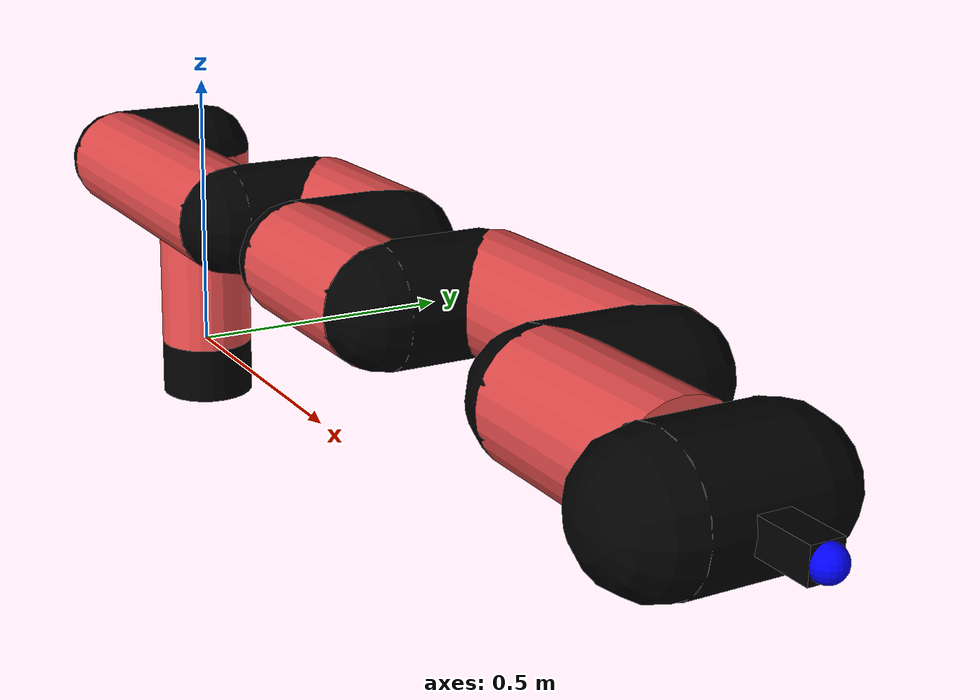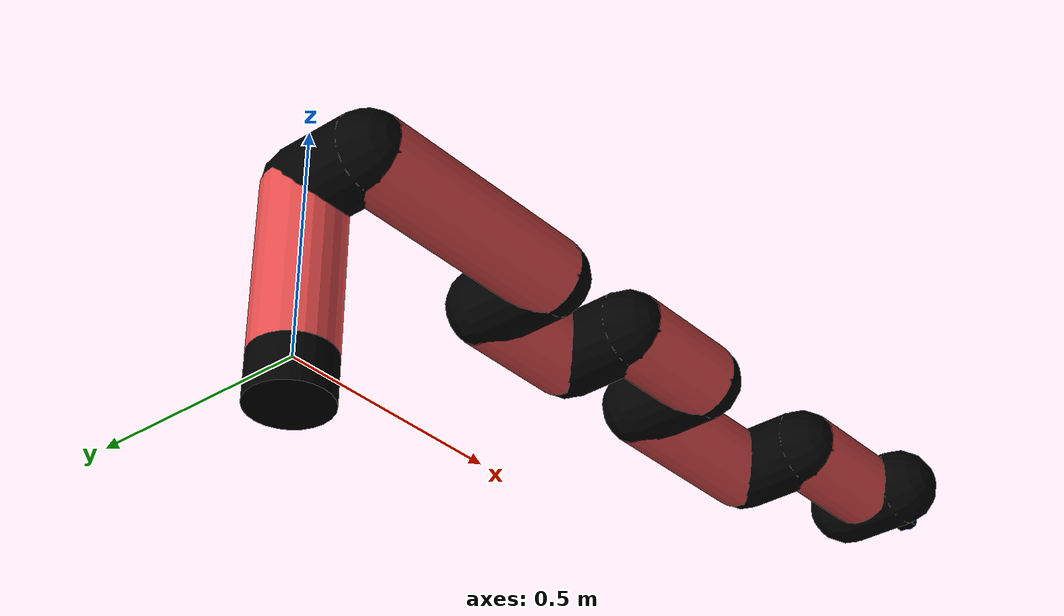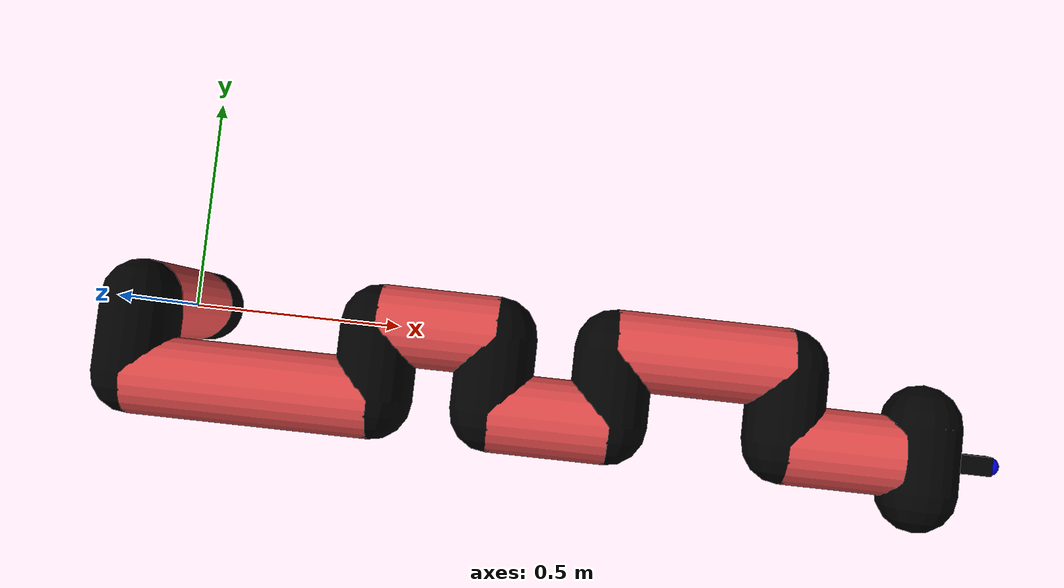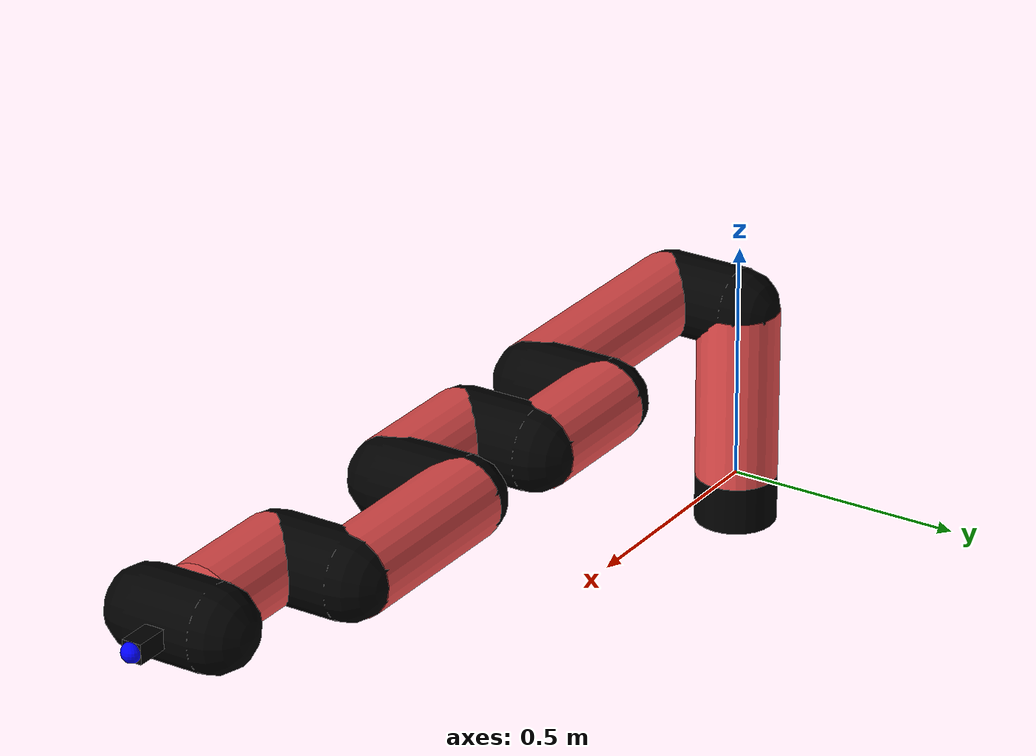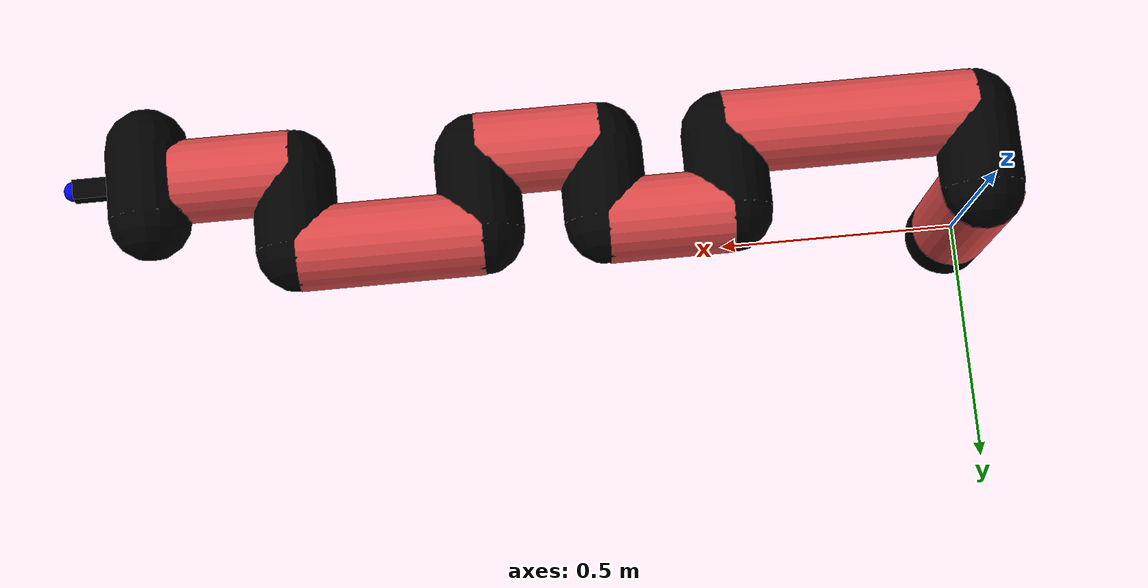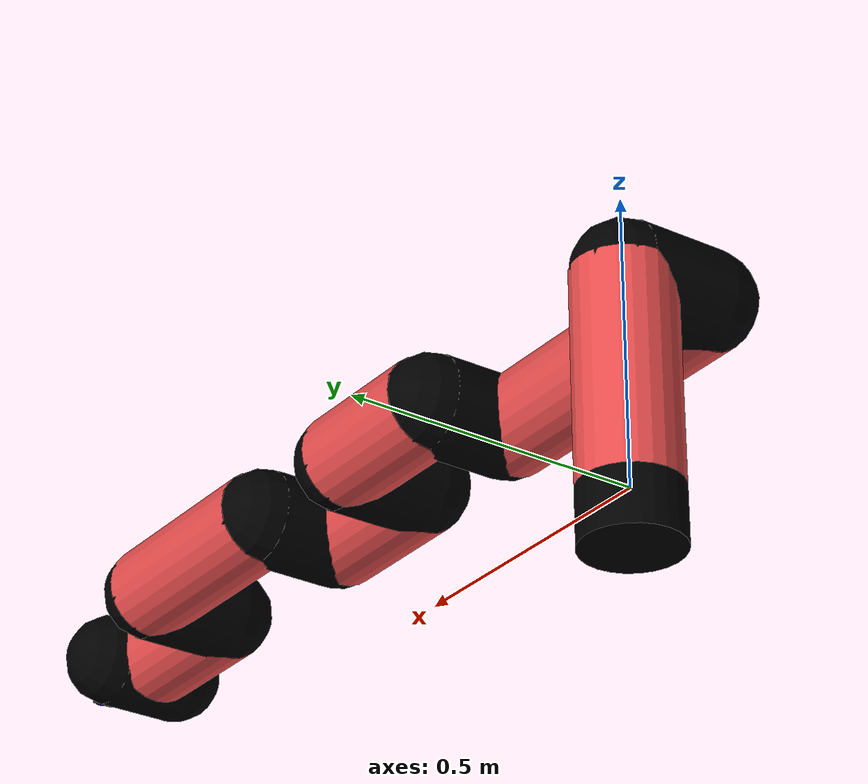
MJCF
<mujoco model="manipulator">
		<compiler angle="degree" coordinate="local" inertiafromgeom="auto" meshdir="meshes/"/>
		<option gravity="0 0 0" integrator="RK4" iterations="30" timestep="0.01"/>

		<default>
		<joint armature="1" limited="true" stiffness="10" damping="15" frictionloss="5.0"/>
		<geom conaffinity="1" condim="3" contype="1" friction=".5 .1 .1" margin="0.002"/>
		<motor ctrllimited="true"/>
		<position ctrllimited="true"/>
		</default>

		<asset>
		<texture builtin="gradient" height="100" rgb1="1.0 1.0 1.0" rgb2="1.0 1.0 1.0" type="skybox" width="100"/>
		<texture builtin="flat" height="32" name="arm_tex" rgb1="0.9 0.3 0.3" type="2d" width="32"/>
		<texture builtin="flat" height="32" name="gripper_tex" rgb1="0.0 0.0 0.0" type="cube" width="32"/>

		<material name="arm_mat" shininess="0.1" specular="0.1" texture="arm_tex"/>
		<material name="gripper_mat" shininess="1" specular="1" texture="gripper_tex"/>
		</asset>

		<worldbody>
		<light cutoff="45" diffuse=".8 .8 .8" dir="0 0.16 -1" directional="false" name="light" pos="0 -2.0 8.0" specular="0.3 0.3 0.3"/>

		<body name="base_link" pos="0 0 -0.1">
		<geom fromto="0 0 0 0 0 0.1" material="arm_mat" name="base_link" rgba="0.0 0.0 0.0 1" size="0.085" type="cylinder"/>
		</body>

		<body name="l1" pos="0 0 0">
<geom fromto="0 0 0 0 0 0.37" material="arm_mat" name="l1" rgba="0.9 0.3 0.3 1" size="0.085" type="cylinder"/>
<geom fromto="0 0 0.37 0 -0.16 0.37" material="arm_mat" name="l1_ex" rgba="0.0 0.0 0.0 1" size="0.085" type="capsule"/>
<joint axis="0 0 1" name="j1" pos="0 0 0" range="-90 90" damping="33.89" frictionloss="10.62"/>

<body name="l2" pos="0 -0.16 0.37">
<geom fromto="0 0 0 0.51 0 0" material="arm_mat" name="l2" rgba="0.9 0.3 0.3 1" size="0.085" type="cylinder"/>
<geom fromto="0.51 0 0 0.51 0.16 0" material="arm_mat" name="l2_ex" rgba="0.0 0.0 0.0 1" size="0.085" type="capsule"/>
<joint axis="0.0 1.0 0.0" name="j2" pos="0 0 0" range="-90 60" damping="25.18" frictionloss="10.2"/>

<body name="l3" pos="0.51 0.16 0">
<geom fromto="0 0 0 0.25 0 0" material="arm_mat" name="l3" rgba="0.9 0.3 0.3 1" size="0.085" type="cylinder"/>
<geom fromto="0.25 0 0 0.25 -0.16 0" material="arm_mat" name="l3_ex" rgba="0.0 0.0 0.0 1" size="0.085" type="capsule"/>
<joint axis="0.0 1.0 0.0" name="j3" pos="0 0 0" range="-30 60" damping="30.66" frictionloss="11.46"/>

<body name="l4" pos="0.25 -0.16 0">
<geom fromto="0 0 0 0.25 0 0" material="arm_mat" name="l4" rgba="0.9 0.3 0.3 1" size="0.085" type="cylinder"/>
<geom fromto="0.25 0 0 0.25 0.16 0" material="arm_mat" name="l4_ex" rgba="0.0 0.0 0.0 1" size="0.085" type="capsule"/>
<joint axis="0.0 1.0 0.0" name="j4" pos="0 0 0" range="-30 60" damping="36.55" frictionloss="12.16"/>

<body name="l5" pos="0.25 0.16 0">
<geom fromto="0 0 0 0.37 0 0" material="arm_mat" name="l5" rgba="0.9 0.3 0.3 1" size="0.085" type="cylinder"/>
<geom fromto="0.37 0 0 0.37 -0.16 0" material="arm_mat" name="l5_ex" rgba="0.0 0.0 0.0 1" size="0.085" type="capsule"/>
<joint axis="0.0 1.0 0.0" name="j5" pos="0 0 0" range="-30 60" damping="25.36" frictionloss="9.5"/>

<body name="l6" pos="0.37 -0.16 0">
<geom fromto="0 0 0 0.24 0 0" material="arm_mat" name="l6" rgba="0.9 0.3 0.3 1" size="0.085" type="cylinder"/>
<joint axis="0.0 1.0 0.0" name="j6" pos="0 0 0" range="-30 60" damping="28.41" frictionloss="7.55"/>

<body name="gripper" pos="0.24 0 0">
<geom fromto="0.05 -0.07 0 0.05 0.07 0" material="gripper_mat" name="gripper" rgba="0.0 0.0 0.0 1" size="0.085" type="capsule"/><joint axis="1 0 0" name="j7" pos="0 0 0" range="-90 90" damping="15" frictionloss="5.0"/><body name="finger" pos="0.1 0 0">
<geom fromto="0 0.0 0 0.1 0.0 0" material="gripper_mat" name="finger" rgba="0.0 0.0 0.0 1" size="0.020 0.06 0.06" type="box"/>
</body>
<site name="current" pos="0.2 0. 0.0" rgba="0. 0. 1.0 1" size="0.02" type="sphere"/>
</body>
</body>
</body>
</body>
</body>
</body>
</body>
</worldbody>
<actuator>
<motor ctrllimited="true" ctrlrange="-1.0 1.0" joint="j1" gear="63.56"/>
<motor ctrllimited="true" ctrlrange="-1.0 1.0" joint="j2" gear="76.39"/>
<motor ctrllimited="true" ctrlrange="-1.0 1.0" joint="j3" gear="88.59"/>
<motor ctrllimited="true" ctrlrange="-1.0 1.0" joint="j4" gear="74.35"/>
<motor ctrllimited="true" ctrlrange="-1.0 1.0" joint="j5" gear="93.64"/>
<motor ctrllimited="true" ctrlrange="-1.0 1.0" joint="j6" gear="68.46"/>
<motor ctrllimited="true" ctrlrange="-1.0 1.0" joint="j7" gear="80"/>
</actuator>
</mujoco>
